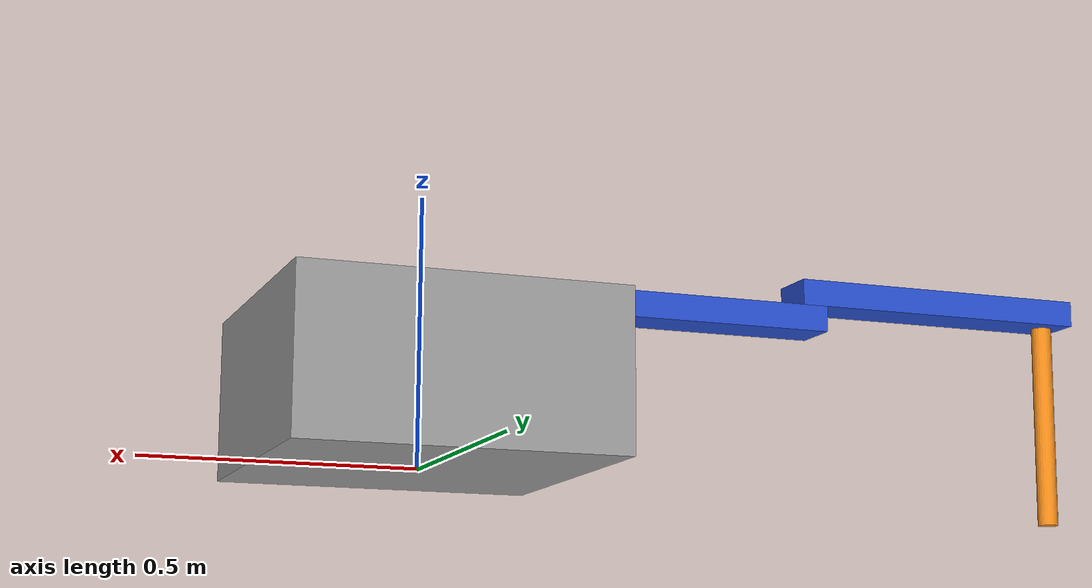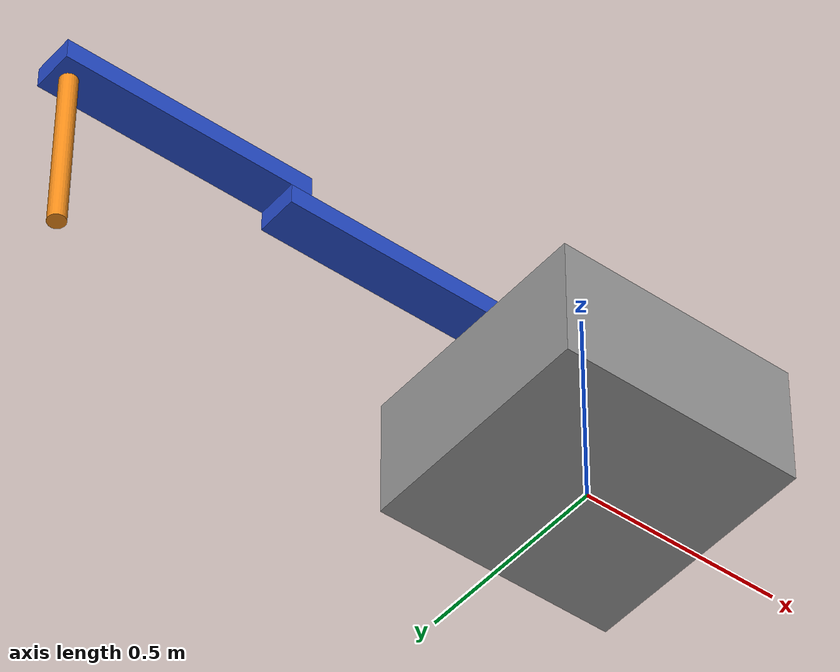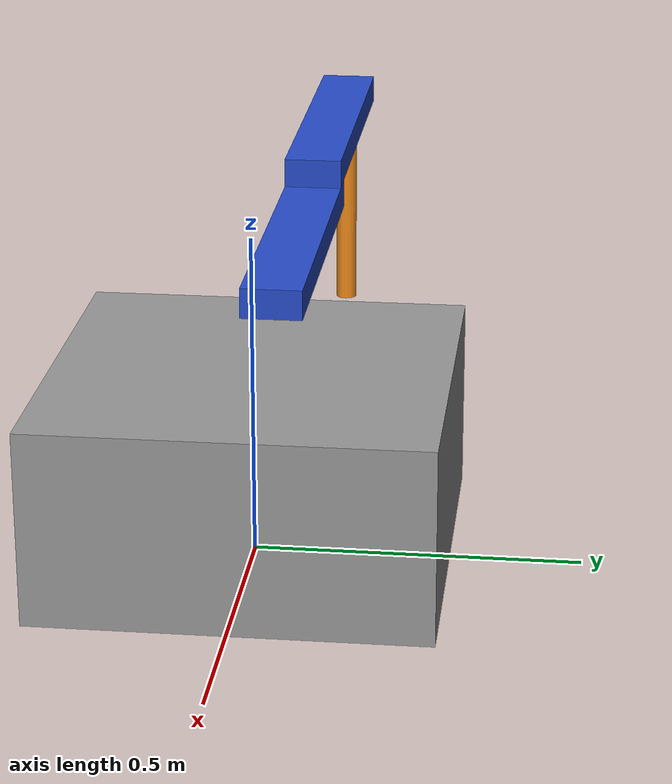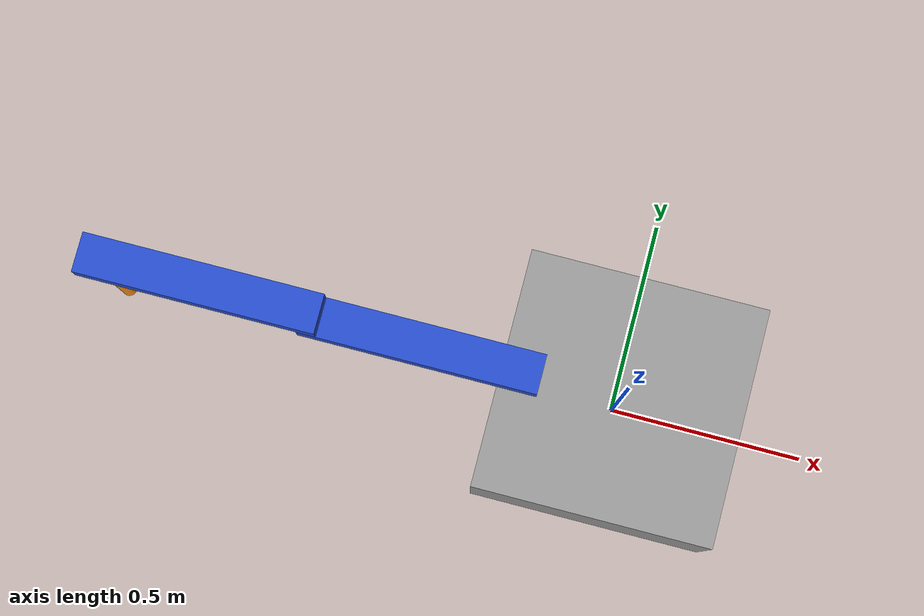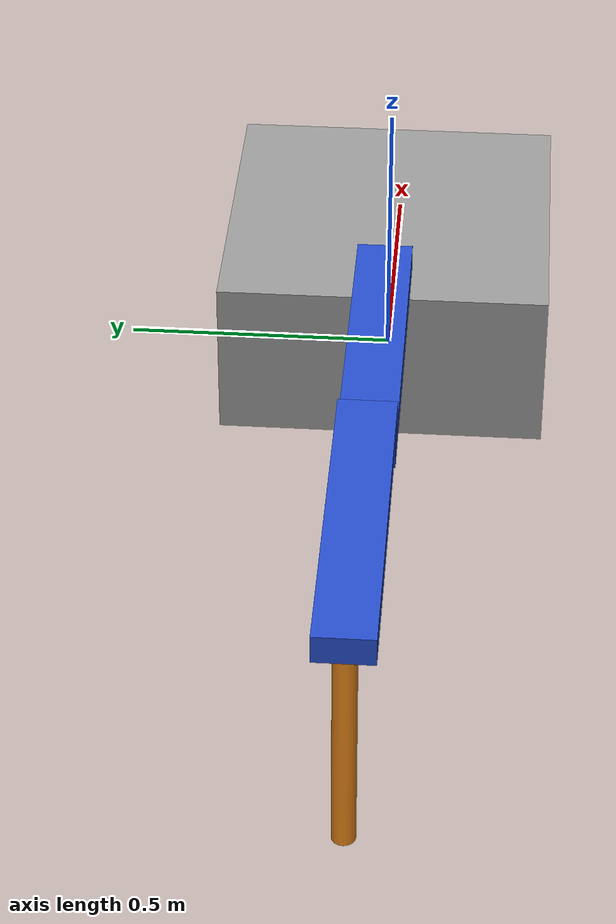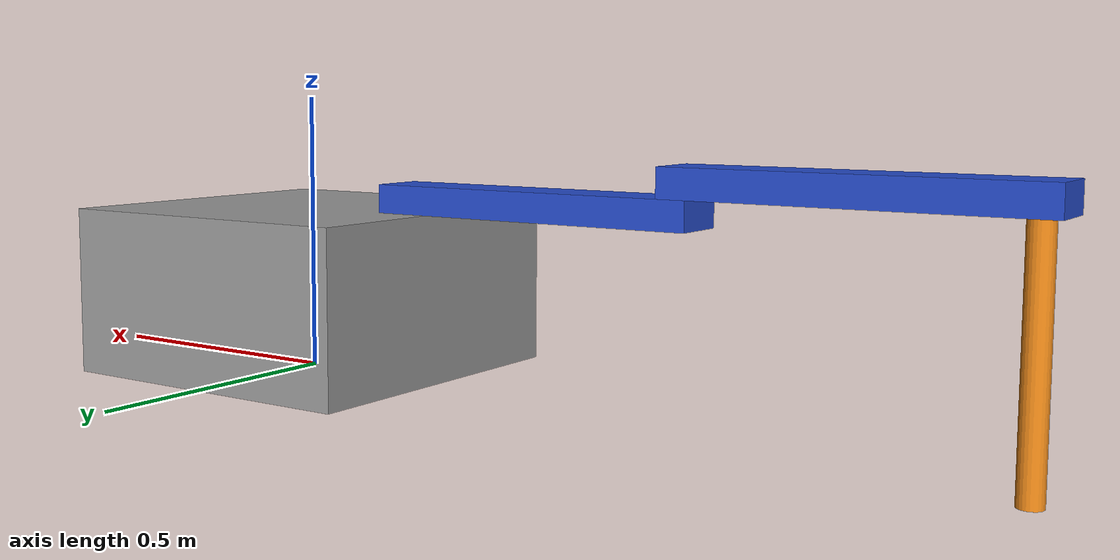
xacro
<?xml version="1.0"?>
<robot xmlns:xacro="http://www.ros.org/wiki/xacro">

    <xacro:property name="base_length" value="0.6"/>
    <xacro:property name="base_width" value="0.6"/>
    <xacro:property name="base_height" value="0.3"/>
    <xacro:property name="link_length" value="0.6"/>
    <xacro:property name="link_width" value="0.1"/>
    <xacro:property name="link_height" value="0.05"/>
    <xacro:property name="link_3_radius" value="0.02"/>
    <xacro:property name="link_3_length" value="0.4"/>
    <xacro:property name="offset" value="0.05"/>

    <link name="base_footprint"/>

    <link name="base_link">
        <visual>
            <geometry>
                <box size="${base_length} ${base_width} ${base_height}"/>
            </geometry>
            <origin xyz="0 0 0" rpy="0 0 0"/>
            <material name="grey"/>
        </visual>
        <collision>
            <geometry>
                <box size="${base_length} ${base_width} ${base_height}"/>
            </geometry>
            <origin xyz="0 0 0" rpy="0 0 0"/>
        </collision>

        <xacro:box_inertia m="50" l="${base_length * 2}" w="${base_width*2}" h="${base_height}"
                            xyz="0 0 0" rpy="0 0 0"/>
    </link>

    <link name="link_1">
        <visual>
            <geometry>
                <box size="${link_length} ${link_width} ${link_height}"/>
            </geometry>
            <origin xyz="${-link_length/2 + offset} 0 0" rpy="0 0 0"/>
            <material name="blue"/>
        </visual>
        <collision>
            <geometry>
                <box size="${link_length} ${link_width} ${link_height}"/>
            </geometry>
            <origin xyz="${-link_length/2 + offset} 0 0" rpy="0 0 0"/>
        </collision>

        <xacro:box_inertia m="5" l="${2*link_length}" w="${2*base_width}" h="${base_height}"
                            xyz="${-link_length/2 + offset} 0 0" rpy="0 0 0"/>
    </link>

    <link name="link_2">
        <visual>
            <geometry>
                <box size="${link_length} ${link_width} ${link_height}"/>
            </geometry>
            <origin xyz="${-link_length/2 + offset} 0 ${link_height/2}" rpy="0 0 0"/>
            <material name="blue"/>
        </visual>

        <collision>
            <geometry>
                <box size="${link_length} ${link_width} ${link_height}"/>
            </geometry>
            <origin xyz="${-link_length/2 + offset} 0 ${link_height/2}" rpy="0 0 0"/>
        </collision>

        <xacro:box_inertia m="5" l="${2*link_length}" w="${2*base_width}" h="${base_height}"
                            xyz="${-link_length/2 + offset} 0 ${link_height/2}" rpy="0 0 0"/>
    </link>

    <link name="link_3">
        <visual>
            <geometry>
                <cylinder radius="${link_3_radius}" length="${link_3_length}"/>
            </geometry>
            <origin xyz="0 0 ${-link_3_length/2}" rpy="0 0 0"/>
            <material name="orange"/>
        </visual>

        <collision>
            <geometry>
                <cylinder radius="${link_3_radius}" length="${link_3_length}"/>
            </geometry>
            <origin xyz="0 0 ${-link_3_length/2}" rpy="0 0 0"/>
        </collision>

        <xacro:cylinder_inertia m="5" r="${2*link_3_radius}" l="${2*link_3_length}"
                            xyz="0 0 ${-link_3_length/2}" rpy="0 0 0"/>

    </link>

    <joint name="base_joint" type="fixed">
        <parent link="base_footprint"/>
        <child link="base_link"/>
        <origin xyz="0 0 ${base_height/2}" rpy="0 0 0"/>
    </joint>

    <joint name="joint_1" type="revolute">
        <parent link="base_link"/>
        <child link="link_1"/>
        <origin xyz="${-link_length/2 + offset} 0 ${(base_height + link_height)/2}" rpy="0 0 0"/>
        <axis xyz="0 0 1"/>
        <limit lower="${-pi/2}" upper="${pi/2}" effort="100" velocity="100"/>
        <dynamics friction="1000" damping="1000"/>

    </joint>

    <joint name="joint_2" type="revolute">
        <parent link="link_1"/>
        <child link="link_2"/>
        <origin xyz="${-link_length + offset} 0 ${link_height/2}" rpy="0 0 0"/>
        <axis xyz="0 0 1"/>
        <limit lower="${-pi/2}" upper="${pi/2}" effort="100" velocity="100"/>
        <dynamics friction="1000" damping="1000"/>
    </joint>

    <joint name="joint_3" type="prismatic">
        <parent link="link_2"/>
        <child link="link_3"/>
        <origin xyz="${-link_length + offset + link_3_radius*2} 0 0" rpy="0 0 0"/>
        <axis xyz="0 0 1"/>
        <limit lower="0" upper="0.4" effort="100" velocity="100"/>
        <dynamics friction="1000" damping="1000"/>
    </joint>

</robot>
